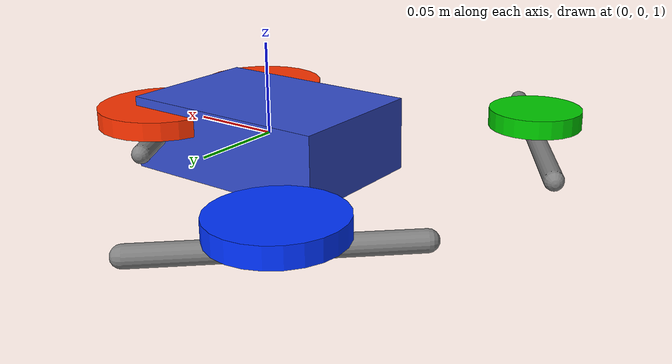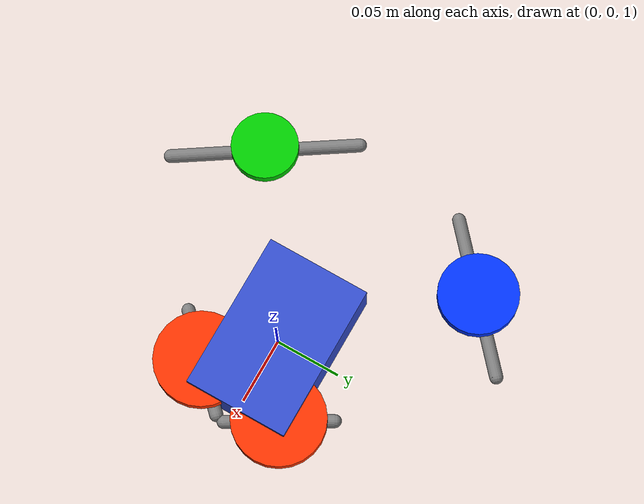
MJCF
<mujoco model="weird_asymmetric_quad">
    <compiler angle="degree" coordinate="local" eulerseq="xyz"/>
    <option timestep="0.002" gravity="0 0 -9.81"/>

    <custom>
        <numeric name="transport_delay_ms" data="10.0"/>
        <numeric name="motor_tau" data="0.015"/>
        <numeric name="dof_mask" data="0 0 1 1 1 1"/>
    </custom>

    <worldbody>
        <light name="sun" pos="0 0 10" dir="0 0 -1"/>
        <geom name="floor" type="plane" size="10 10 0.1" rgba="0.8 0.9 0.8 1"/>

        <body name="drone" pos="0 0 1">
            <freejoint name="root"/>
            <!-- Slightly offset center of mass to make it even harder -->
            <inertial pos="-0.02 -0.01 0" mass="0.65" diaginertia="0.0025 0.003 0.005"/>
            <geom name="core" type="box" size="0.06 0.04 0.02" rgba="0.2 0.3 0.8 1"/>

            <!-- Motor 0: Front Right (Closer, 7 inch) -->
            <!-- Pos: x=0.05, y=0.03 -->
            <body name="arm_0" pos="0.05 0.03 0.0">
                <geom type="capsule" size="0.005 0.04" rgba="0.5 0.5 0.5 1" euler="90 30 0"/>
                <site name="thruster_0" pos="0 0 0.01" type="cylinder" size="0.035 0.005" rgba="1 0.2 0 1"/>
            </body>

            <!-- Motor 1: Front Left (Closer, 7 inch) -->
            <!-- Pos: x=0.04, y=-0.04 (asymmetric layout) -->
            <body name="arm_1" pos="0.04 -0.04 0.0">
                <geom type="capsule" size="0.005 0.04" rgba="0.5 0.5 0.5 1" euler="90 -45 0"/>
                <site name="thruster_1" pos="0 0 0.01" type="cylinder" size="0.035 0.005" rgba="1 0.2 0 1"/>
            </body>

            <!-- Motor 2: Rear Left (Further, 5 inch) -->
            <!-- Pos: x=-0.12, y=-0.08 -->
            <body name="arm_2" pos="-0.12 -0.08 0.0">
                <geom type="capsule" size="0.005 0.07" rgba="0.5 0.5 0.5 1" euler="90 33 0"/>
                <site name="thruster_2" pos="0 0 0.01" type="cylinder" size="0.025 0.005" rgba="0 0.8 0 1"/>
            </body>

            <!-- Motor 3: Rear Right (Further, 6 inch) -->
            <!-- Pos: x=-0.10, y=0.11 -->
            <body name="arm_3" pos="-0.10 0.11 0.0">
                <geom type="capsule" size="0.005 0.06" rgba="0.5 0.5 0.5 1" euler="90 -48 0"/>
                <site name="thruster_3" pos="0 0 0.01" type="cylinder" size="0.030 0.005" rgba="0 0.2 1 1"/>
            </body>
        </body>
    </worldbody>

    <actuator>
        <!-- Gear Array: [ForceX, ForceY, ForceZ, TorqueX, TorqueY, TorqueZ] -->
        <!-- Front 7-inch: higher thrust (0-16), higher drag (~0.02) -->
        <general name="m_0" site="thruster_0" gear="0 0 1 0 0 -0.02" ctrllimited="true" ctrlrange="0 16"/>
        <general name="m_1" site="thruster_1" gear="0 0 1 0 0  0.02" ctrllimited="true" ctrlrange="0 16"/>

        <!-- Rear Left 5-inch: lower thrust (0-9), lower drag (~0.01) -->
        <general name="m_2" site="thruster_2" gear="0 0 1 0 0 -0.01" ctrllimited="true" ctrlrange="0 9"/>

        <!-- Rear Right 6-inch: med thrust (0-12), med drag (~0.015) -->
        <general name="m_3" site="thruster_3" gear="0 0 1 0 0  0.015" ctrllimited="true" ctrlrange="0 12"/>
    </actuator>
</mujoco>
